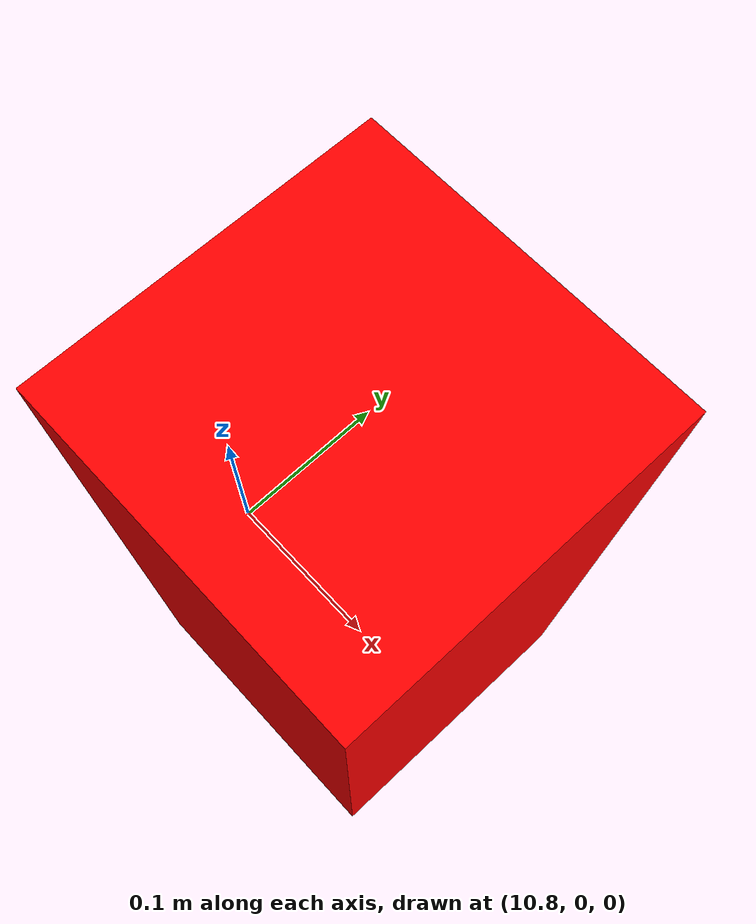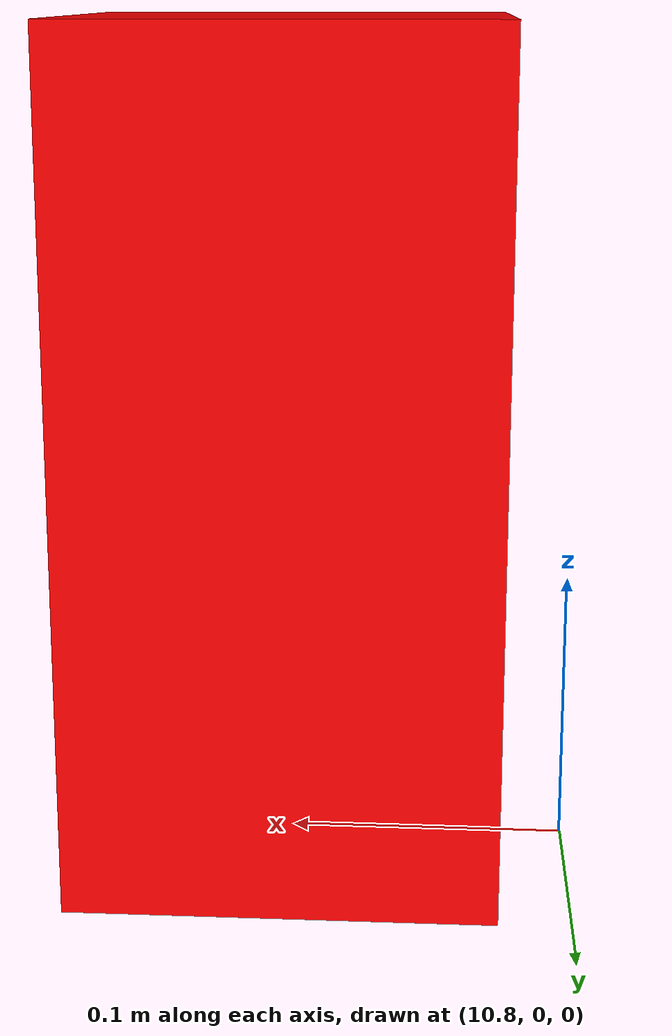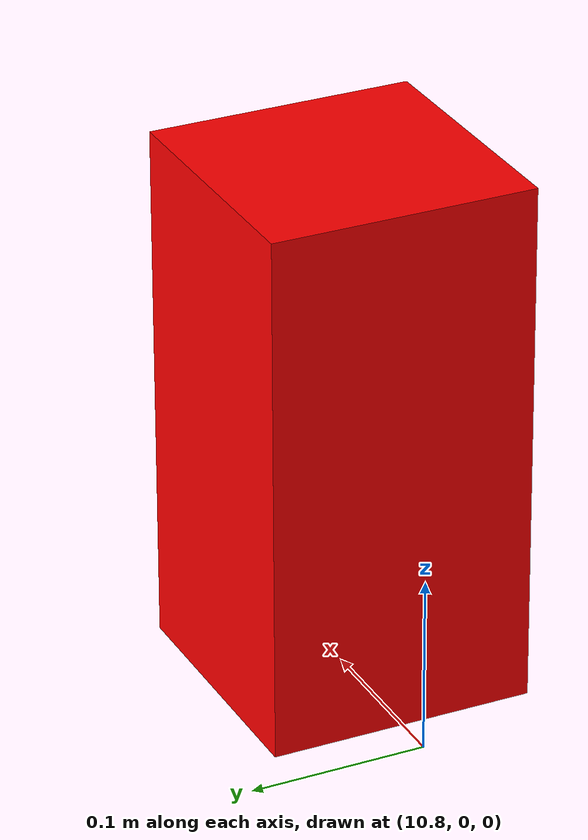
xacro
<?xml version="1.0"?>
<robot xmlns:xacro="http://www.ros.org/wiki/xacro" name="collision_box">

  <!-- Parametri configurabili -->
  <xacro:arg name="box_x" default="10.9"/>
  <xacro:arg name="box_y" default="0.0"/>
  <xacro:arg name="box_z" default="0.15"/>
  <xacro:arg name="box_size_x" default="0.15"/>
  <xacro:arg name="box_size_y" default="0.15"/>
  <xacro:arg name="box_size_z" default="0.3"/>

  <!-- Link base fisso al mondo -->
  <link name="world"/>

  <!-- Link dell'ostacolo -->
  <link name="obstacle_box">
    <!-- Visual per Gazebo e RViz -->
    <visual>
      <origin xyz="0 0 0" rpy="0 0 0"/>
      <geometry>
        <box size="$(arg box_size_x) $(arg box_size_y) $(arg box_size_z)"/>
      </geometry>
      <material name="red">
        <color rgba="1.0 0.0 0.0 1.0"/>
      </material>
    </visual>

    <!-- Collision per simulazione fisica -->
    <collision>
      <origin xyz="0 0 0" rpy="0 0 0"/>
      <geometry>
        <box size="$(arg box_size_x) $(arg box_size_y) $(arg box_size_z)"/>
      </geometry>
    </collision>

    <!-- Inertial properties per Gazebo -->
    <inertial>
      <origin xyz="0 0 0" rpy="0 0 0"/>
      <mass value="1.0"/>
      <inertia ixx="0.0075" ixy="0.0" ixz="0.0"
               iyy="0.0075" iyz="0.0"
               izz="0.00375"/>
    </inertial>
  </link>

  <!-- Joint fisso che posiziona l'ostacolo nel mondo -->
  <joint name="obstacle_to_world" type="fixed">
    <parent link="world"/>
    <child link="obstacle_box"/>
    <origin xyz="$(arg box_x) $(arg box_y) $(arg box_z)" rpy="0 0 0"/>
  </joint>

  <!-- Gazebo-specific properties -->
  <gazebo reference="obstacle_box">
    <material>Gazebo/Red</material>
    <mu1>1.0</mu1>
    <mu2>1.0</mu2>
    <static>true</static>
  </gazebo>

</robot>
